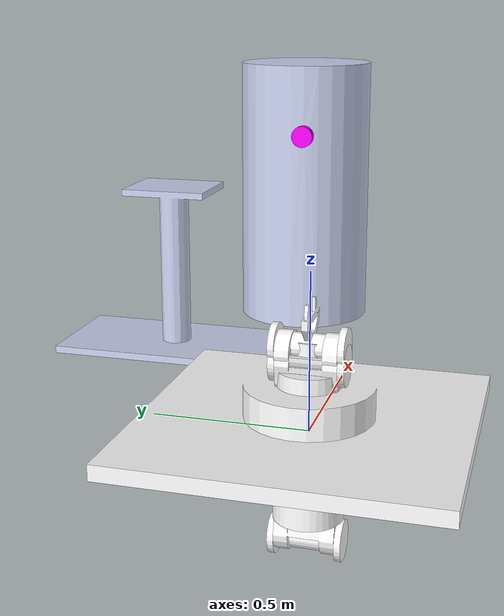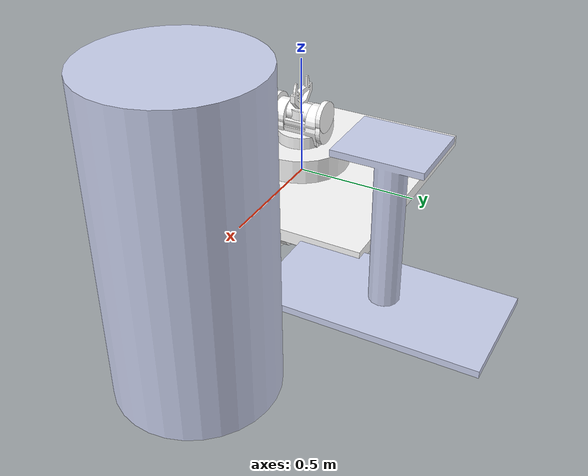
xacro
<?xml version="1.0"?>
<!-- Name your robot here -->
<robot name ="robot_arm" xmlns:xacro="http://wiki.ros.org/xacro">

<!-- Include your urdf files here -->
	<!-- Include Robot's urdf filepath -->
	<!-- Include Lidar's urdf filepath -->
	<xacro:include filename="$(find robot_arm)/urdf/robot_arm.urdf"/>
	<xacro:include filename="$(find robot_arm)/urdf/gas_station.urdf"/>

<!-- Add your gazebo sensors here -->

<!--  Gazebo plugin for control here is already added for you -->
	<gazebo>
		<plugin name="gazebo_ros_control" filename="libgazebo_ros_control.so">
			<robotNamespace>/robot_arm</robotNamespace>
			<robotSimType>gazebo_ros_control/DefaultRobotHWSim</robotSimType>
			<legacyModeNS>true</legacyModeNS>
		</plugin>
	</gazebo>

</robot>

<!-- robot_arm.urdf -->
<robot
  name="robot_arm">

  <link name="world" />

  <link
    name="link1">
    <inertial>
      <origin
        xyz="-2.40249256666454E-17 2.31372309668347E-18 0.0377872136537855"
        rpy="0 0 0" />
      <mass
        value="61.2942137276504" />
      <inertia
        ixx="4.43601929007034"
        ixy="1.36432140292152E-34"
        ixz="-1.98607621195975E-17"
        iyy="4.43601929007034"
        iyz="2.63017918691454E-16"
        izz="8.73156973973922" />
    </inertial>
    <visual>
      <origin
        xyz="0 0 0"
        rpy="0 0 0" />
      <geometry>
        <mesh
          filename="package://robot_arm/meshes/link1.STL" />
      </geometry>
      <material
        name="">
        <color
          rgba="1 1 1 1" />
      </material>
    </visual>
    <collision>
      <origin
        xyz="0 0 0"
        rpy="0 0 0" />
      <geometry>
        <mesh
          filename="package://robot_arm/meshes/link1.STL" />
      </geometry>
    </collision>
  </link>

  <joint
    name="dummy_joint" type="fixed">
    <parent
    link="world" />
    <child
    link="link1" />
  </joint>

  <link
    name="link2">
    <inertial>
      <origin
        xyz="-4.35215650781507E-08 0.078485141091096 1.11026771309439E-07"
        rpy="0 0 0" />
      <mass
        value="0.737268633073559" />
      <inertia
        ixx="0.00902499302769591"
        ixy="8.68553880492339E-10"
        ixz="2.22317991155093E-10"
        iyy="0.00744275967559365"
        iyz="-3.346207450723E-09"
        izz="0.0076515703348216" />
    </inertial>
    <visual>
      <origin
        xyz="0 0 0"
        rpy="0 0 0" />
      <geometry>
        <mesh
          filename="package://robot_arm/meshes/link2.STL" />
      </geometry>
      <material
        name="">
        <color
          rgba="1 1 1 1" />
      </material>
    </visual>
    <collision>
      <origin
        xyz="0 0 0"
        rpy="0 0 0" />
      <geometry>
        <mesh
          filename="package://robot_arm/meshes/link2.STL" />
      </geometry>
    </collision>
  </link>
  <joint
    name="theta1"
    type="revolute">
    <origin
      xyz="0 0 0.085"
      rpy="1.5707963267949 0 0" />
    <parent
      link="link1" />
    <child
      link="link2" />
    <axis
      xyz="0 1 0" />
    <limit
      lower="0"
      upper="6.28"
      effort="50"
      velocity="100" />
  </joint>
  <link
    name="link3">
    <inertial>
      <origin
        xyz="1.5669967572918E-05 -0.304040443554538 1.26439609733212E-05"
        rpy="0 0 0" />
      <mass
        value="1.50038625923708" />
      <inertia
        ixx="0.052319481834011"
        ixy="1.64531036881196E-06"
        ixz="9.33503082022147E-07"
        iyy="0.00431963419819591"
        iyz="3.6487518522938E-06"
        izz="0.0530164409141027" />
    </inertial>
    <visual>
      <origin
        xyz="0 0 0"
        rpy="0 0 0" />
      <geometry>
        <mesh
          filename="package://robot_arm/meshes/link3.STL" />
      </geometry>
      <material
        name="">
        <color
          rgba="1 1 1 1" />
      </material>
    </visual>
    <collision>
      <origin
        xyz="0 0 0"
        rpy="0 0 0" />
      <geometry>
        <mesh
          filename="package://robot_arm/meshes/link3.STL" />
      </geometry>
    </collision>
  </link>
  <joint
    name="theta2"
    type="revolute">
    <origin
      xyz="0 0.175 0"
      rpy="0 -1.5707963267949 0" />
    <parent
      link="link2" />
    <child
      link="link3" />
    <axis
      xyz="1 0 0" />
    <limit
      lower="0"
      upper="6.28"
      effort="50"
      velocity="100" />
  </joint>
  <link
    name="link4">
    <inertial>
      <origin
        xyz="-4.51747276560345E-08 0.0850017270786476 1.09208076331341E-07"
        rpy="0 0 0" />
      <mass
        value="0.580635526432428" />
      <inertia
        ixx="0.00558115890727697"
        ixy="2.44052950747551E-10"
        ixz="1.8653224324632E-10"
        iyy="0.00457338067351513"
        iyz="-1.10378996232253E-09"
        izz="0.00420773867787236" />
    </inertial>
    <visual>
      <origin
        xyz="0 0 0"
        rpy="0 0 0" />
      <geometry>
        <mesh
          filename="package://robot_arm/meshes/link4.STL" />
      </geometry>
      <material
        name="">
        <color
          rgba="1 1 1 1" />
      </material>
    </visual>
    <collision>
      <origin
        xyz="0 0 0"
        rpy="0 0 0" />
      <geometry>
        <mesh
          filename="package://robot_arm/meshes/link4.STL" />
      </geometry>
    </collision>
  </link>
  <joint
    name="theta3"
    type="revolute">
    <origin
      xyz="0 -0.45 0"
      rpy="0 -1.5707963267949 3.14" />
    <parent
      link="link3" />
    <child
      link="link4" />
    <axis
      xyz="0 1 0" />
    <limit
      lower="0"
      upper="6.28"
      effort="50"
      velocity="100" />
  </joint>
  <link
    name="link5">
    <inertial>
      <origin
        xyz="-1.0078455658839E-05 -0.285046767851249 -6.67426817258954E-06"
        rpy="0 0 0" />
      <mass
        value="0.809676366607652" />
      <inertia
        ixx="0.0419576894032026"
        ixy="6.40817094606129E-07"
        ixz="-2.35798103181255E-07"
        iyy="0.00403574866352981"
        iyz="2.26766392675903E-07"
        izz="0.0434071334875582" />
    </inertial>
    <visual>
      <origin
        xyz="0 0 0"
        rpy="0 0 0" />
      <geometry>
        <mesh
          filename="package://robot_arm/meshes/link5.STL" />
      </geometry>
      <material
        name="">
        <color
          rgba="1 1 1 1" />
      </material>
    </visual>
    <collision>
      <origin
        xyz="0 0 0"
        rpy="0 0 0" />
      <geometry>
        <mesh
          filename="package://robot_arm/meshes/link5.STL" />
      </geometry>
    </collision>
  </link>
  <joint
    name="theta4"
    type="revolute">
    <origin
      xyz="0 0.15 0"
      rpy="0 -1.5707963267949 0" />
    <parent
      link="link4" />
    <child
      link="link5" />
    <axis
      xyz="1 0 0" />
    <limit
      lower="0"
      upper="6.28"
      effort="50"
      velocity="100" />
  </joint>
  <link
    name="link6">
    <inertial>
      <origin
        xyz="-2.35443707453134E-17 -0.0183941969382351 7.71464384058771E-07"
        rpy="0 0 0" />
      <mass
        value="0.245546177121655" />
      <inertia
        ixx="0.000607734736200731"
        ixy="3.46591932546715E-19"
        ixz="-7.81851278918393E-09"
        iyy="0.00189409564096144"
        iyz="-8.28876725575695E-09"
        izz="0.00197254885181598" />
    </inertial>
    <visual>
      <origin
        xyz="0 0 0"
        rpy="0 0 0" />
      <geometry>
        <mesh
          filename="package://robot_arm/meshes/link6.STL" />
      </geometry>
      <material
        name="">
        <color
          rgba="1 1 1 1" />
      </material>
    </visual>
    <collision>
      <origin
        xyz="0 0 0"
        rpy="0 0 0" />
      <geometry>
        <mesh
          filename="package://robot_arm/meshes/link6.STL" />
      </geometry>
    </collision>
  </link>
  <joint
    name="theta5"
    type="revolute">
    <origin
      xyz="0 -0.55 0"
      rpy="0 0 0" />
    <parent
      link="link5" />
    <child
      link="link6" />
    <axis
      xyz="1 0 0" />
    <limit
      lower="0"
      upper="0"
      effort="50"
      velocity="100" />
  </joint>
  <link
    name="gripper_base">
    <inertial>
      <origin
        xyz="3.96543347935535E-15 0.0562270701372454 -2.40815807774708E-05"
        rpy="0 0 0" />
      <mass
        value="0.0716560481058097" />
      <inertia
        ixx="8.58079461912336E-05"
        ixy="1.25446010309657E-20"
        ixz="-4.51808632086734E-21"
        iyy="0.000116159886704529"
        iyz="4.72349251842634E-08"
        izz="0.000188878643374606" />
    </inertial>
    <visual>
      <origin
        xyz="0 0 0"
        rpy="0 0 0" />
      <geometry>
        <mesh
          filename="package://robot_arm/meshes/gripper_base.STL" />
      </geometry>
      <material
        name="">
        <color
          rgba="1 1 1 1" />
      </material>
    </visual>
    <collision>
      <origin
        xyz="0 0 0"
        rpy="0 0 0" />
      <geometry>
        <mesh
          filename="package://robot_arm/meshes/gripper_base.STL" />
      </geometry>
    </collision>
  </link>
  <joint
    name="theta6"
    type="revolute">
    <origin
      xyz="0 -0.0600000000000001 0"
      rpy="0 -1.5707963267949 3.14" />
    <parent
      link="link6" />
    <child
      link="gripper_base" />
    <axis
      xyz="0 1 0" />
    <limit
      lower="0"
      upper="6.28"
      effort="30"
      velocity="1" />
  </joint>
  <link
    name="finger1">
    <inertial>
      <origin
        xyz="0.00330693559222194 0.0055384610597653 -3.99171079640944E-17"
        rpy="0 0 0" />
      <mass
        value="0.00565212855241566" />
      <inertia
        ixx="1.39106127614759E-06"
        ixy="6.83676597168532E-08"
        ixz="1.60958074122774E-23"
        iyy="3.3065635572341E-07"
        iyz="-6.36335466077704E-23"
        izz="1.44950431895636E-06" />
    </inertial>
    <visual>
      <origin
        xyz="0 0 0"
        rpy="0 0 0" />
      <geometry>
        <mesh
          filename="package://robot_arm/meshes/finger1.STL" />
      </geometry>
      <material
        name="">
        <color
          rgba="1 1 1 1" />
      </material>
    </visual>
    <collision>
      <origin
        xyz="0 0 0"
        rpy="0 0 0" />
      <geometry>
        <mesh
          filename="package://robot_arm/meshes/finger1.STL" />
      </geometry>
    </collision>
  </link>
  <joint
    name="grasp_angle1"
    type="revolute">
    <origin
      xyz="-0.0449999999999998 0.105 0"
      rpy="3.14159265358979 0 3.14159265358979" />
    <parent
      link="gripper_base" />
    <child
      link="finger1" />
    <axis
      xyz="0 0 1" />
    <limit
      lower="0"
      upper="0.6"
      effort="30"
      velocity="1" />
  </joint>
  <link
    name="finger2">
    <inertial>
      <origin
        xyz="0.00330693559222193 0.0055384610597653 4.30339663826916E-17"
        rpy="0 0 0" />
      <mass
        value="0.00565212855241566" />
      <inertia
        ixx="1.39106127614759E-06"
        ixy="6.83676597168533E-08"
        ixz="-1.93560521554188E-24"
        iyy="3.30656355723409E-07"
        iyz="2.90684300456426E-23"
        izz="1.44950431895636E-06" />
    </inertial>
    <visual>
      <origin
        xyz="0 0 0"
        rpy="0 0 0" />
      <geometry>
        <mesh
          filename="package://robot_arm/meshes/finger2.STL" />
      </geometry>
      <material
        name="">
        <color
          rgba="1 1 1 1" />
      </material>
    </visual>
    <collision>
      <origin
        xyz="0 0 0"
        rpy="0 0 0" />
      <geometry>
        <mesh
          filename="package://robot_arm/meshes/finger2.STL" />
      </geometry>
    </collision>
  </link>
  <joint
    name="grasp_angle2"
    type="revolute">
    <origin
      xyz="0.045 0.105 0"
      rpy="0 0 0" />
    <parent
      link="gripper_base" />
    <child
      link="finger2" />
    <axis
      xyz="0 0 1" />
    <limit
      lower="0"
      upper="0.6"
      effort="30"
      velocity="1" />
  </joint>

<transmission name="theta1_trans">
  <type>SimpleTransmission</type>
  <joint name="theta1">
    <hardwareInterface>hardware_interface/PositionJointInterface</hardwareInterface>
  </joint>
  <actuator name="steer_motor1">
    <mechanicalReduction>1</mechanicalReduction>
    <hardwareInterface>hardware_interface/PositionJointInterface</hardwareInterface>
  </actuator>
</transmission>

<transmission name="theta2_trans">
  <type>SimpleTransmission</type>
  <joint name="theta2">
    <hardwareInterface>hardware_interface/PositionJointInterface</hardwareInterface>
  </joint>
  <actuator name="steer_motor2">
    <mechanicalReduction>1</mechanicalReduction>
    <hardwareInterface>hardware_interface/PositionJointInterface</hardwareInterface>
  </actuator>
</transmission>

<transmission name="theta3_trans">
  <type>SimpleTransmission</type>
  <joint name="theta3">
    <hardwareInterface>hardware_interface/PositionJointInterface</hardwareInterface>
  </joint>
  <actuator name="steer_motor3">
    <mechanicalReduction>1</mechanicalReduction>
    <hardwareInterface>hardware_interface/PositionJointInterface</hardwareInterface>
  </actuator>
</transmission>

<transmission name="theta4_trans">
  <type>SimpleTransmission</type>
  <joint name="theta4">
    <hardwareInterface>hardware_interface/PositionJointInterface</hardwareInterface>
  </joint>
  <actuator name="steer_motor4">
    <mechanicalReduction>1</mechanicalReduction>
    <hardwareInterface>hardware_interface/PositionJointInterface</hardwareInterface>
  </actuator>
</transmission>

<transmission name="theta5_trans">
  <type>SimpleTransmission</type>
  <joint name="theta5">
    <hardwareInterface>hardware_interface/PositionJointInterface</hardwareInterface>
  </joint>
  <actuator name="steer_motor5">
    <mechanicalReduction>1</mechanicalReduction>
    <hardwareInterface>hardware_interface/PositionJointInterface</hardwareInterface>
  </actuator>
</transmission>

<transmission name="theta6_trans">
  <type>SimpleTransmission</type>
  <joint name="theta6">
    <hardwareInterface>hardware_interface/EffortJointInterface</hardwareInterface>
  </joint>
  <actuator name="steer_motor6">
    <mechanicalReduction>1</mechanicalReduction>
    <hardwareInterface>hardware_interface/EffortJointInterface</hardwareInterface>
  </actuator>
</transmission>

<transmission name="grasp_angle1_trans">
  <type>SimpleTransmission</type>
  <joint name="grasp_angle1">
    <hardwareInterface>hardware_interface/EffortJointInterface</hardwareInterface>
  </joint>
  <actuator name="steer_motor7">
    <mechanicalReduction>1</mechanicalReduction>
    <hardwareInterface>hardware_interface/EffortJointInterface</hardwareInterface>
  </actuator>
</transmission>

<transmission name="grasp_angle2_trans">
  <type>SimpleTransmission</type>
  <joint name="grasp_angle2">
    <hardwareInterface>hardware_interface/EffortJointInterface</hardwareInterface>
  </joint>
  <actuator name="steer_motor8">
    <mechanicalReduction>1</mechanicalReduction>
    <hardwareInterface>hardware_interface/EffortJointInterface</hardwareInterface>
  </actuator>
</transmission>

</robot>

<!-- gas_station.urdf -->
<robot
  name="gas_station">

  <joint name="gas_base" type="fixed">
    <parent link="world"/>
    <child link="base_link"/>
    <origin
        xyz="0.5 1 0"
        rpy="0 0 -1.57" />
  </joint>

  <link
    name="base_link">
    <inertial>
      <origin
        xyz="0.33623522871174 0.177469849603709 -0.157088210766902"
        rpy="0 0 0" />
      <mass
        value="14.7299030053972" />
      <inertia
        ixx="0.84809476085918"
        ixy="2.16358479686617E-16"
        ixz="-3.12340431296576E-17"
        iyy="0.570458410670287"
        iyz="1.41812677336259E-16"
        izz="1.17714382335918" />
    </inertial>
    <visual>
      <origin
        xyz="0 0 0"
        rpy="0 0 0" />
      <geometry>
        <mesh
          filename="package://robot_arm/meshes/base_link.STL" />
      </geometry>
      <material
        name="">
        <color
          rgba="0.792156862745098 0.819607843137255 0.933333333333333 1" />
      </material>
    </visual>
    <collision>
      <origin
        xyz="0 0 0"
        rpy="0 0 0" />
      <geometry>
        <mesh
          filename="package://robot_arm/meshes/base_link.STL" />
      </geometry>
    </collision>
  </link>
  <link
    name="can">
    <inertial>
      <origin
        xyz="-2.91321358858454E-05 0.507858212214229 -0.254124949054085"
        rpy="0 0 0" />
      <mass
        value="205.80876150373" />
      <inertia
        ixx="21.0224297483758"
        ixy="0.00149417840441406"
        ixz="0.00131477697143659"
        iyy="6.63675201340054"
        iyz="0.00640851591178053"
        izz="21.027784542719" />
    </inertial>
    <visual>
      <origin
        xyz="0 0 0"
        rpy="0 0 0" />
      <geometry>
        <mesh
          filename="package://robot_arm/meshes/can.STL" />
      </geometry>
      <material
        name="">
        <color
          rgba="0.792156862745098 0.819607843137255 0.933333333333333 1" />
      </material>
    </visual>
    <collision>
      <origin
        xyz="0 0 0"
        rpy="0 0 0" />
      <geometry>
        <mesh
          filename="package://robot_arm/meshes/can.STL" />
      </geometry>
    </collision>
  </link>
  <joint
    name="joint1"
    type="fixed">
    <origin
      xyz="0.68423 0.49036 0"
      rpy="1.5708 0 0" />
    <parent
      link="base_link" />
    <child
      link="can" />
    <axis
      xyz="0 0 1" />
  </joint>
  <link
    name="can_cap">
    <inertial>
      <origin
        xyz="-0.000190569433694776 0.0861865712247863 0.000116843388021537"
        rpy="0 0 0" />
      <mass
        value="0.0355823783414013" />
      <inertia
        ixx="9.7828437401394E-05"
        ixy="-8.40260160941324E-08"
        ixz="-4.90965484752551E-10"
        iyy="3.05802645774461E-05"
        iyz="-3.67434137816846E-07"
        izz="9.78264027528471E-05" />
    </inertial>
    <visual>
      <origin
        xyz="0 0 0"
        rpy="0 0 0" />
      <geometry>
        <mesh
          filename="package://robot_arm/meshes/can_cap.STL" />
      </geometry>
      <material
        name="">
        <color
          rgba="1 0 1 1" />
      </material>
    </visual>
    <collision>
      <origin
        xyz="0 0 0"
        rpy="0 0 0" />
      <geometry>
        <mesh
          filename="package://robot_arm/meshes/can_cap.STL" />
      </geometry>
    </collision>
  </link>
  <joint
    name="joint2"
    type="revolute">
    <origin
      xyz="0.052002 0.75692 -0.1143"
      rpy="1.5708 0 0" />
    <parent
      link="can" />
    <child
      link="can_cap" />
    <axis
      xyz="0 1 0" />
    <limit
      lower="0"
      upper="0"
      effort="0"
      velocity="0" />
  </joint>
</robot>
